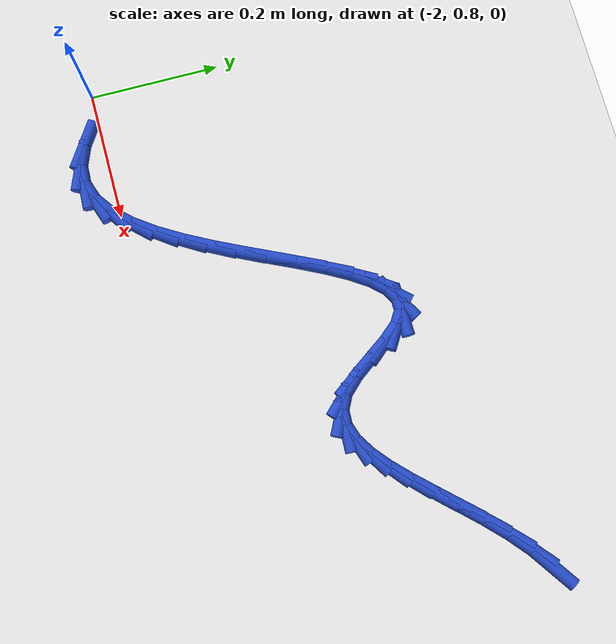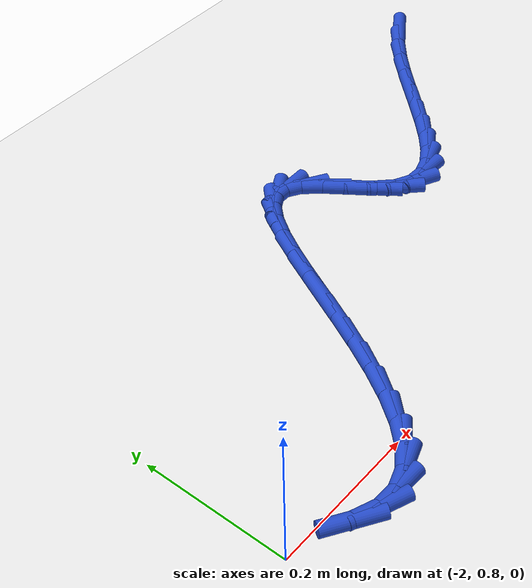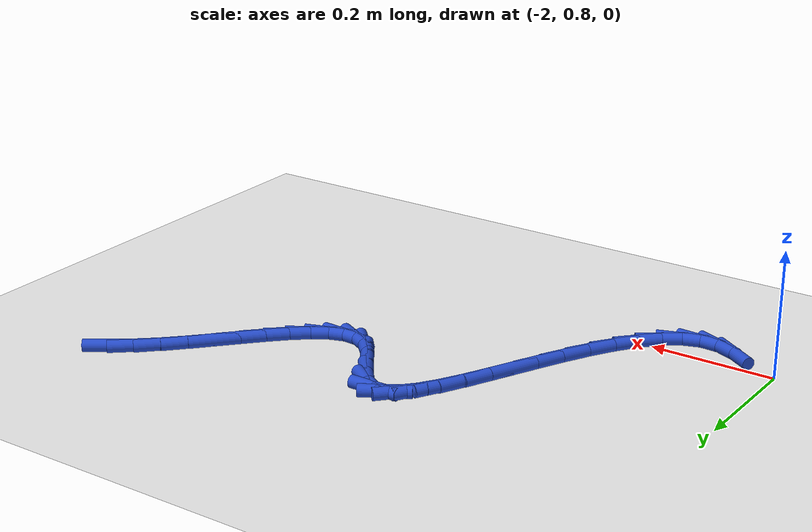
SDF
<sdf version="1.6">
 <world name="default">
  <model name="ground_plane">
   <static>1</static>
   <link name="link">
    <collision name="collision">
     <geometry><plane><normal>0 0 1</normal><size>100 100</size></plane></geometry>
     <surface><friction><ode><mu>100</mu><mu2>50</mu2></ode></friction></surface>
    </collision>
    <visual name="visual">
     <cast_shadows>0</cast_shadows>
     <geometry><plane><normal>0 0 1</normal><size>100 100</size></plane></geometry>
     <material>
      <script><uri>file://media/materials/scripts/gazebo.material</uri><name>Gazebo/WhiteGlow</name></script>
     </material>
    </visual>
   </link>
  </model>
  <model name="line">
   <link name="link_67">
    <pose>-1.1322794664993863 1.278271481078573 0.01 0 1.57 0.6022304035378606</pose>
    <collision name="collision">
     <geometry><cylinder><radius>0.01</radius><length>0.08</length></cylinder></geometry>
    </collision>
    <visual name="visual">
     <material>
      <script><name>Gazebo/Blue</name><uri>file://media/materials/scripts/gazebo.material</uri></script>
     </material>
     <geometry><cylinder><radius>0.01</radius><length>0.08</length></cylinder></geometry>
    </visual>
   </link>
   <link name="link_68">
    <pose>-1.1628237823363055 1.2572748251911945 0.01 0 1.57 0.7060330936975208</pose>
    <collision name="collision">
     <geometry><cylinder><radius>0.01</radius><length>0.08</length></cylinder></geometry>
    </collision>
    <visual name="visual">
     <material>
      <script><name>Gazebo/Blue</name><uri>file://media/materials/scripts/gazebo.material</uri></script>
     </material>
     <geometry><cylinder><radius>0.01</radius><length>0.08</length></cylinder></geometry>
    </visual>
   </link>
   <link name="link_69">
    <pose>-1.1926003396604754 1.2318857109990473 0.01 0 1.57 0.7733556615438558</pose>
    <collision name="collision">
     <geometry><cylinder><radius>0.01</radius><length>0.08</length></cylinder></geometry>
    </collision>
    <visual name="visual">
     <material>
      <script><name>Gazebo/Blue</name><uri>file://media/materials/scripts/gazebo.material</uri></script>
     </material>
     <geometry><cylinder><radius>0.01</radius><length>0.08</length></cylinder></geometry>
    </visual>
   </link>
   <link name="link_70">
    <pose>-1.2216082746293986 1.2035681517737284 0.01 0 1.57 0.8119953114622698</pose>
    <collision name="collision">
     <geometry><cylinder><radius>0.01</radius><length>0.08</length></cylinder></geometry>
    </collision>
    <visual name="visual">
     <material>
      <script><name>Gazebo/Blue</name><uri>file://media/materials/scripts/gazebo.material</uri></script>
     </material>
     <geometry><cylinder><radius>0.01</radius><length>0.08</length></cylinder></geometry>
    </visual>
   </link>
   <link name="link_71">
    <pose>-1.2498467234005772 1.1737861607868347 0.01 0 1.57 0.8258004485538232</pose>
    <collision name="collision">
     <geometry><cylinder><radius>0.01</radius><length>0.08</length></cylinder></geometry>
    </collision>
    <visual name="visual">
     <material>
      <script><name>Gazebo/Blue</name><uri>file://media/materials/scripts/gazebo.material</uri></script>
     </material>
     <geometry><cylinder><radius>0.01</radius><length>0.08</length></cylinder></geometry>
    </visual>
   </link>
   <link name="link_72">
    <pose>-1.2773148221315134 1.1440037513099643 0.01 0 1.57 0.8148708450045724</pose>
    <collision name="collision">
     <geometry><cylinder><radius>0.01</radius><length>0.08</length></cylinder></geometry>
    </collision>
    <visual name="visual">
     <material>
      <script><name>Gazebo/Blue</name><uri>file://media/materials/scripts/gazebo.material</uri></script>
     </material>
     <geometry><cylinder><radius>0.01</radius><length>0.08</length></cylinder></geometry>
    </visual>
   </link>
   <link name="link_73">
    <pose>-1.3040117069797093 1.1156849366147144 0.01 0 1.57 0.775000215249241</pose>
    <collision name="collision">
     <geometry><cylinder><radius>0.01</radius><length>0.08</length></cylinder></geometry>
    </collision>
    <visual name="visual">
     <material>
      <script><name>Gazebo/Blue</name><uri>file://media/materials/scripts/gazebo.material</uri></script>
     </material>
     <geometry><cylinder><radius>0.01</radius><length>0.08</length></cylinder></geometry>
    </visual>
   </link>
   <link name="link_74">
    <pose>-1.3299365141026664 1.0902937299726825 0.01 0 1.57 0.6956690130868082</pose>
    <collision name="collision">
     <geometry><cylinder><radius>0.01</radius><length>0.08</length></cylinder></geometry>
    </collision>
    <visual name="visual">
     <material>
      <script><name>Gazebo/Blue</name><uri>file://media/materials/scripts/gazebo.material</uri></script>
     </material>
     <geometry><cylinder><radius>0.01</radius><length>0.08</length></cylinder></geometry>
    </visual>
   </link>
   <link name="link_75">
    <pose>-1.355088379657887 1.0692941446554656 0.01 0 1.57 0.5558709354532964</pose>
    <collision name="collision">
     <geometry><cylinder><radius>0.01</radius><length>0.08</length></cylinder></geometry>
    </collision>
    <visual name="visual">
     <material>
      <script><name>Gazebo/Blue</name><uri>file://media/materials/scripts/gazebo.material</uri></script>
     </material>
     <geometry><cylinder><radius>0.01</radius><length>0.08</length></cylinder></geometry>
    </visual>
   </link>
   <link name="link_76">
    <pose>-1.379466439802873 1.0541501939346616 0.01 0 1.57 0.32009120316125955</pose>
    <collision name="collision">
     <geometry><cylinder><radius>0.01</radius><length>0.08</length></cylinder></geometry>
    </collision>
    <visual name="visual">
     <material>
      <script><name>Gazebo/Blue</name><uri>file://media/materials/scripts/gazebo.material</uri></script>
     </material>
     <geometry><cylinder><radius>0.01</radius><length>0.08</length></cylinder></geometry>
    </visual>
   </link>
   <link name="link_77">
    <pose>-1.4030698306951268 1.0463258910818678 0.01 0 1.57 -0.042001054062786265</pose>
    <collision name="collision">
     <geometry><cylinder><radius>0.01</radius><length>0.08</length></cylinder></geometry>
    </collision>
    <visual name="visual">
     <material>
      <script><name>Gazebo/Blue</name><uri>file://media/materials/scripts/gazebo.material</uri></script>
     </material>
     <geometry><cylinder><radius>0.01</radius><length>0.08</length></cylinder></geometry>
    </visual>
   </link>
   <link name="link_78">
    <pose>-1.4258976884921502 1.0472852493686817 0.01 0 1.57 -0.4702033790401221</pose>
    <collision name="collision">
     <geometry><cylinder><radius>0.01</radius><length>0.08</length></cylinder></geometry>
    </collision>
    <visual name="visual">
     <material>
      <script><name>Gazebo/Blue</name><uri>file://media/materials/scripts/gazebo.material</uri></script>
     </material>
     <geometry><cylinder><radius>0.01</radius><length>0.08</length></cylinder></geometry>
    </visual>
   </link>
   <link name="link_79">
    <pose>-1.4479491493514451 1.0584922820667004 0.01 0 1.57 -0.7998623264071261</pose>
    <collision name="collision">
     <geometry><cylinder><radius>0.01</radius><length>0.08</length></cylinder></geometry>
    </collision>
    <visual name="visual">
     <material>
      <script><name>Gazebo/Blue</name><uri>file://media/materials/scripts/gazebo.material</uri></script>
     </material>
     <geometry><cylinder><radius>0.01</radius><length>0.08</length></cylinder></geometry>
    </visual>
   </link>
   <link name="link_80">
    <pose>-1.4692330966651799 1.0804010189776572 0.01 0 1.57 -0.9395240260426623</pose>
    <collision name="collision">
     <geometry><cylinder><radius>0.01</radius><length>0.08</length></cylinder></geometry>
    </collision>
    <visual name="visual">
     <material>
      <script><name>Gazebo/Blue</name><uri>file://media/materials/scripts/gazebo.material</uri></script>
     </material>
     <geometry><cylinder><radius>0.01</radius><length>0.08</length></cylinder></geometry>
    </visual>
   </link>
   <link name="link_81">
    <pose>-1.4898059306293878 1.1085419204927653 0.01 0 1.57 -0.9589189700152593</pose>
    <collision name="collision">
     <geometry><cylinder><radius>0.01</radius><length>0.08</length></cylinder></geometry>
    </collision>
    <visual name="visual">
     <material>
      <script><name>Gazebo/Blue</name><uri>file://media/materials/scripts/gazebo.material</uri></script>
     </material>
     <geometry><cylinder><radius>0.01</radius><length>0.08</length></cylinder></geometry>
    </visual>
   </link>
   <link name="link_82">
    <pose>-1.5097385093054665 1.136947360055595 0.01 0 1.57 -0.8646044907235039</pose>
    <collision name="collision">
     <geometry><cylinder><radius>0.01</radius><length>0.08</length></cylinder></geometry>
    </collision>
    <visual name="visual">
     <material>
      <script><name>Gazebo/Blue</name><uri>file://media/materials/scripts/gazebo.material</uri></script>
     </material>
     <geometry><cylinder><radius>0.01</radius><length>0.08</length></cylinder></geometry>
    </visual>
   </link>
   <link name="link_83">
    <pose>-1.5291016941559281 1.159649358695039 0.01 0 1.57 -0.5514637937763708</pose>
    <collision name="collision">
     <geometry><cylinder><radius>0.01</radius><length>0.08</length></cylinder></geometry>
    </collision>
    <visual name="visual">
     <material>
      <script><name>Gazebo/Blue</name><uri>file://media/materials/scripts/gazebo.material</uri></script>
     </material>
     <geometry><cylinder><radius>0.01</radius><length>0.08</length></cylinder></geometry>
    </visual>
   </link>
   <link name="link_84">
    <pose>-1.547971442976684 1.1712565384934222 0.01 0 1.57 0.013093412863579615</pose>
    <collision name="collision">
     <geometry><cylinder><radius>0.01</radius><length>0.08</length></cylinder></geometry>
    </collision>
    <visual name="visual">
     <material>
      <script><name>Gazebo/Blue</name><uri>file://media/materials/scripts/gazebo.material</uri></script>
     </material>
     <geometry><cylinder><radius>0.01</radius><length>0.08</length></cylinder></geometry>
    </visual>
   </link>
   <link name="link_85">
    <pose>-1.56646469684183 1.171014384847148 0.01 0 1.57 0.5265742635997706</pose>
    <collision name="collision">
     <geometry><cylinder><radius>0.01</radius><length>0.08</length></cylinder></geometry>
    </collision>
    <visual name="visual">
     <material>
      <script><name>Gazebo/Blue</name><uri>file://media/materials/scripts/gazebo.material</uri></script>
     </material>
     <geometry><cylinder><radius>0.01</radius><length>0.08</length></cylinder></geometry>
    </visual>
   </link>
   <link name="link_86">
    <pose>-1.5847181494901752 1.1604032069738401 0.01 0 1.57 0.8208560756091862</pose>
    <collision name="collision">
     <geometry><cylinder><radius>0.01</radius><length>0.08</length></cylinder></geometry>
    </collision>
    <visual name="visual">
     <material>
      <script><name>Gazebo/Blue</name><uri>file://media/materials/scripts/gazebo.material</uri></script>
     </material>
     <geometry><cylinder><radius>0.01</radius><length>0.08</length></cylinder></geometry>
    </visual>
   </link>
   <link name="link_87">
    <pose>-1.6028686216467602 1.1409176813607576 0.01 0 1.57 0.9757614024944871</pose>
    <collision name="collision">
     <geometry><cylinder><radius>0.01</radius><length>0.08</length></cylinder></geometry>
    </collision>
    <visual name="visual">
     <material>
      <script><name>Gazebo/Blue</name><uri>file://media/materials/scripts/gazebo.material</uri></script>
     </material>
     <geometry><cylinder><radius>0.01</radius><length>0.08</length></cylinder></geometry>
    </visual>
   </link>
   <link name="link_88">
    <pose>-1.6210529340366278 1.1140524844951583 0.01 0 1.57 1.059962515966758</pose>
    <collision name="collision">
     <geometry><cylinder><radius>0.01</radius><length>0.08</length></cylinder></geometry>
    </collision>
    <visual name="visual">
     <material>
      <script><name>Gazebo/Blue</name><uri>file://media/materials/scripts/gazebo.material</uri></script>
     </material>
     <geometry><cylinder><radius>0.01</radius><length>0.08</length></cylinder></geometry>
    </visual>
   </link>
   <link name="link_89">
    <pose>-1.6394079073848185 1.081302292864301 0.01 0 1.57 1.1051647171678076</pose>
    <collision name="collision">
     <geometry><cylinder><radius>0.01</radius><length>0.08</length></cylinder></geometry>
    </collision>
    <visual name="visual">
     <material>
      <script><name>Gazebo/Blue</name><uri>file://media/materials/scripts/gazebo.material</uri></script>
     </material>
     <geometry><cylinder><radius>0.01</radius><length>0.08</length></cylinder></geometry>
    </visual>
   </link>
   <link name="link_90">
    <pose>-1.6580703624163757 1.0441617829554453 0.01 0 1.57 1.125523883518099</pose>
    <collision name="collision">
     <geometry><cylinder><radius>0.01</radius><length>0.08</length></cylinder></geometry>
    </collision>
    <visual name="visual">
     <material>
      <script><name>Gazebo/Blue</name><uri>file://media/materials/scripts/gazebo.material</uri></script>
     </material>
     <geometry><cylinder><radius>0.01</radius><length>0.08</length></cylinder></geometry>
    </visual>
   </link>
   <link name="link_91">
    <pose>-1.67717711985634 1.0041256312558493 0.01 0 1.57 1.1272446213114504</pose>
    <collision name="collision">
     <geometry><cylinder><radius>0.01</radius><length>0.08</length></cylinder></geometry>
    </collision>
    <visual name="visual">
     <material>
      <script><name>Gazebo/Blue</name><uri>file://media/materials/scripts/gazebo.material</uri></script>
     </material>
     <geometry><cylinder><radius>0.01</radius><length>0.08</length></cylinder></geometry>
    </visual>
   </link>
   <link name="link_92">
    <pose>-1.6968650004297543 0.9626885142527714 0.01 0 1.57 1.112306721895551</pose>
    <collision name="collision">
     <geometry><cylinder><radius>0.01</radius><length>0.08</length></cylinder></geometry>
    </collision>
    <visual name="visual">
     <material>
      <script><name>Gazebo/Blue</name><uri>file://media/materials/scripts/gazebo.material</uri></script>
     </material>
     <geometry><cylinder><radius>0.01</radius><length>0.08</length></cylinder></geometry>
    </visual>
   </link>
   <link name="link_93">
    <pose>-1.71727082486166 0.9213451084334706 0.01 0 1.57 1.0797055475705788</pose>
    <collision name="collision">
     <geometry><cylinder><radius>0.01</radius><length>0.08</length></cylinder></geometry>
    </collision>
    <visual name="visual">
     <material>
      <script><name>Gazebo/Blue</name><uri>file://media/materials/scripts/gazebo.material</uri></script>
     </material>
     <geometry><cylinder><radius>0.01</radius><length>0.08</length></cylinder></geometry>
    </visual>
   </link>
   <link name="link_94">
    <pose>-1.7385314138770984 0.8815900902852053 0.01 0 1.57 1.0253991445311545</pose>
    <collision name="collision">
     <geometry><cylinder><radius>0.01</radius><length>0.08</length></cylinder></geometry>
    </collision>
    <visual name="visual">
     <material>
      <script><name>Gazebo/Blue</name><uri>file://media/materials/scripts/gazebo.material</uri></script>
     </material>
     <geometry><cylinder><radius>0.01</radius><length>0.08</length></cylinder></geometry>
    </visual>
   </link>
   <link name="link_95">
    <pose>-1.7607835882011122 0.8449181362952344 0.01 0 1.57 0.941198906671154</pose>
    <collision name="collision">
     <geometry><cylinder><radius>0.01</radius><length>0.08</length></cylinder></geometry>
    </collision>
    <visual name="visual">
     <material>
      <script><name>Gazebo/Blue</name><uri>file://media/materials/scripts/gazebo.material</uri></script>
     </material>
     <geometry><cylinder><radius>0.01</radius><length>0.08</length></cylinder></geometry>
    </visual>
   </link>
   <link name="link_96">
    <pose>-1.7841641685587426 0.8128239229508166 0.01 0 1.57 0.8125486675647888</pose>
    <collision name="collision">
     <geometry><cylinder><radius>0.01</radius><length>0.08</length></cylinder></geometry>
    </collision>
    <visual name="visual">
     <material>
      <script><name>Gazebo/Blue</name><uri>file://media/materials/scripts/gazebo.material</uri></script>
     </material>
     <geometry><cylinder><radius>0.01</radius><length>0.08</length></cylinder></geometry>
    </visual>
   </link>
   <link name="link_97">
    <pose>-1.8088099756750315 0.7868021267392106 0.01 0 1.57 0.6164027380949529</pose>
    <collision name="collision">
     <geometry><cylinder><radius>0.01</radius><length>0.08</length></cylinder></geometry>
    </collision>
    <visual name="visual">
     <material>
      <script><name>Gazebo/Blue</name><uri>file://media/materials/scripts/gazebo.material</uri></script>
     </material>
     <geometry><cylinder><radius>0.01</radius><length>0.08</length></cylinder></geometry>
    </visual>
   </link>
   <link name="link_98">
    <pose>-1.8348578302750218 0.7683474241476751 0.01 0 1.57 0.3281753680102746</pose>
    <collision name="collision">
     <geometry><cylinder><radius>0.01</radius><length>0.08</length></cylinder></geometry>
    </collision>
    <visual name="visual">
     <material>
      <script><name>Gazebo/Blue</name><uri>file://media/materials/scripts/gazebo.material</uri></script>
     </material>
     <geometry><cylinder><radius>0.01</radius><length>0.08</length></cylinder></geometry>
    </visual>
   </link>
   <link name="link_99">
    <pose>-1.8624445530837535 0.7589544916634686 0.01 0 1.57 -0.039740454138568186</pose>
    <collision name="collision">
     <geometry><cylinder><radius>0.01</radius><length>0.08</length></cylinder></geometry>
    </collision>
    <visual name="visual">
     <material>
      <script><name>Gazebo/Blue</name><uri>file://media/materials/scripts/gazebo.material</uri></script>
     </material>
     <geometry><cylinder><radius>0.01</radius><length>0.08</length></cylinder></geometry>
    </visual>
   </link>
   <link name="link_100">
    <pose>-1.8917069648262697 0.76011800577385 0.01 0 1.57 -0.38281483033804126</pose>
    <collision name="collision">
     <geometry><cylinder><radius>0.01</radius><length>0.08</length></cylinder></geometry>
    </collision>
    <visual name="visual">
     <material>
      <script><name>Gazebo/Blue</name><uri>file://media/materials/scripts/gazebo.material</uri></script>
     </material>
     <geometry><cylinder><radius>0.01</radius><length>0.08</length></cylinder></geometry>
    </visual>
   </link>
   <link name="link_101">
    <pose>-1.9225299886174418 0.7725298297918408 0.01 0 1.57 -0.5827118534005633</pose>
    <collision name="collision">
     <geometry><cylinder><radius>0.01</radius><length>0.08</length></cylinder></geometry>
    </collision>
    <visual name="visual">
     <material>
      <script><name>Gazebo/Blue</name><uri>file://media/materials/scripts/gazebo.material</uri></script>
     </material>
     <geometry><cylinder><radius>0.01</radius><length>0.08</length></cylinder></geometry>
    </visual>
   </link>
  </model>
 </world>
</sdf>
